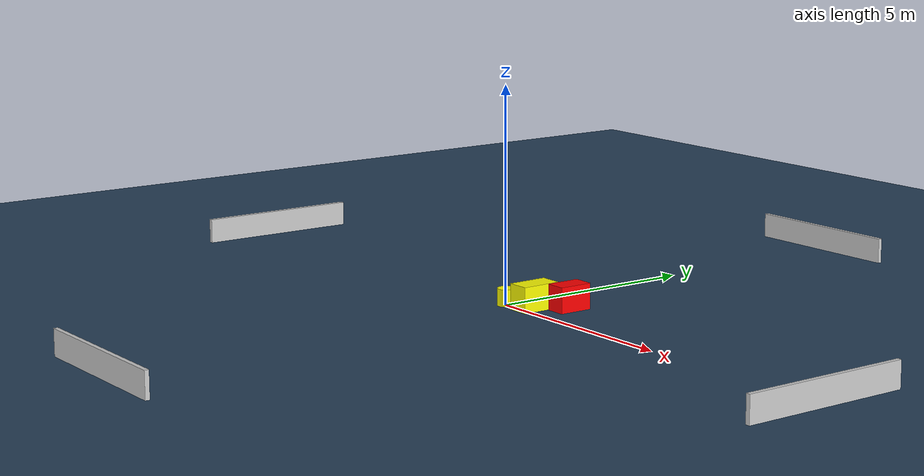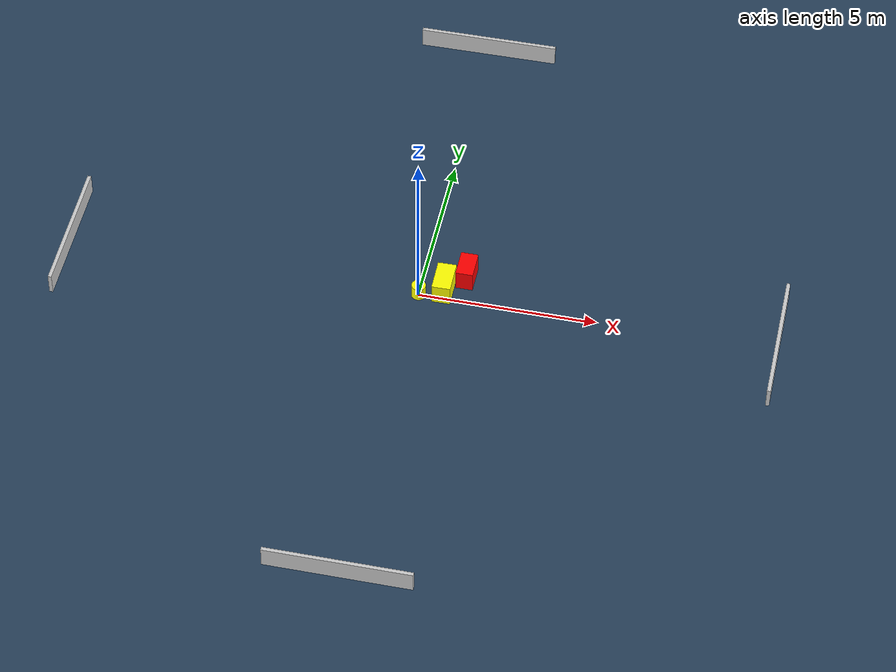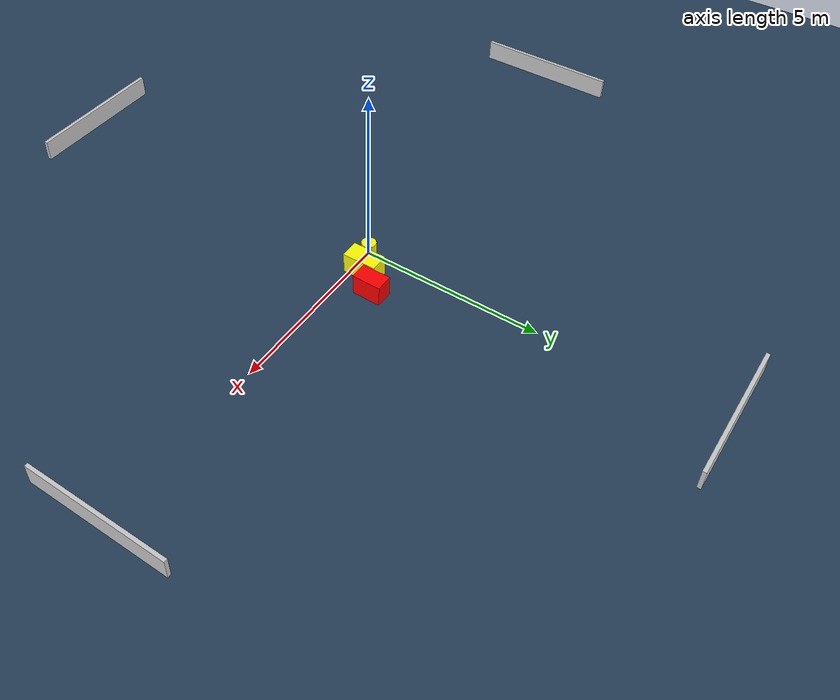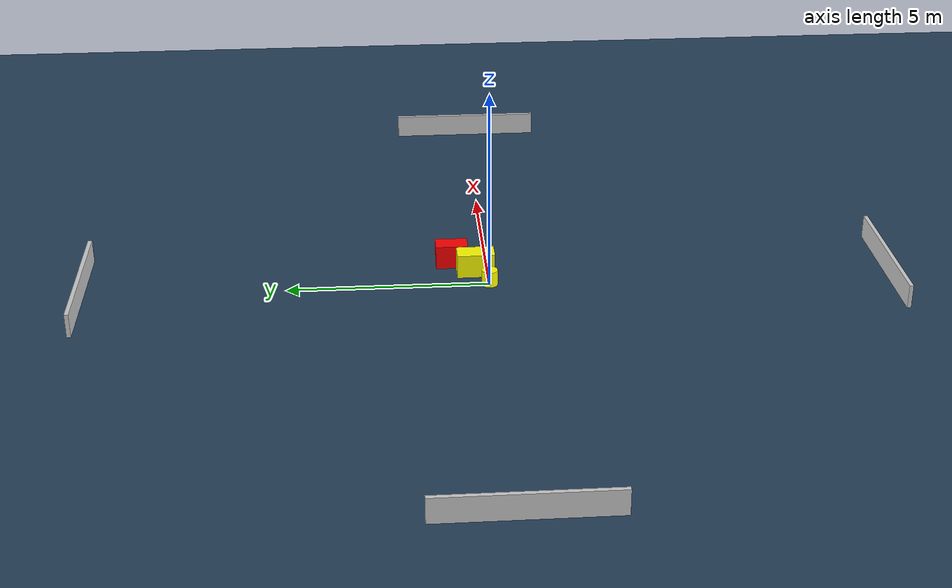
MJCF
<?xml version="1.0" ?>
<mujoco model="generated_environment">
  <option timestep="0.01" integrator="RK4" cone="elliptic"/>
  <default>
    <geom density="1"/>
  </default>
  <asset>
    <texture builtin="gradient" height="3072" name="skybox" rgb1="0.3 0.5 0.7" rgb2="0 0 0" type="skybox" width="512"/>
    <texture builtin="checker" height="300" name="groundplane" rgb1="0.2 0.3 0.4" rgb2="0.1 0.2 0.3" type="2d" width="300"/>
    <material name="groundplane" reflectance="0.2" texrepeat="5 5" texture="groundplane"/>
  </asset>
  <worldbody>
    <light dir="0 0 -1" directional="true" pos="0 0 1.5"/>
    <geom condim="3" friction="0.5 0.005 0.001" material="groundplane" name="floor" pos="0 0 0" size="0 0 0.05" type="plane"/>
    <body name="walls">
      <geom name="wall_1" condim="4" pos="-10.0 0.0 0.3" rgba="0.800000011920929 0.800000011920929 0.800000011920929 1.0" size="0.05 2.0 0.3" type="box"/>
      <geom name="wall_2" condim="4" pos="10.0 0.0 0.3" rgba="0.800000011920929 0.800000011920929 0.800000011920929 1.0" size="0.05 2.0 0.3" type="box"/>
      <geom name="wall_3" condim="4" pos="0.0 -10.0 0.3" rgba="0.800000011920929 0.800000011920929 0.800000011920929 1.0" size="2.0 0.05 0.3" type="box"/>
      <geom name="wall_4" condim="4" pos="0.0 10.0 0.3" rgba="0.800000011920929 0.800000011920929 0.800000011920929 1.0" size="2.0 0.05 0.3" type="box"/>
    </body>
    <body name="robot">
      <joint name="joint_x" type="slide" pos="0 0 0" axis="1 0 0"/>
      <joint name="joint_y" type="slide" pos="0 0 0" axis="0 1 0"/>
      <geom name="robot" type="cylinder" pos="0.0 0.0 0.2" size="0.2 0.2 0.0" mass="5.0" friction="1.0 0.005 0.0001" condim="4" rgba="1.0 1.0 0.0 1.0"/>
    </body>
    <body name="obstacle_1_movable">
      <geom name="obstacle_1_movable" condim="4" pos="0.6523016944380692 0.3069661116856291 0.3" euler="0 0 270.52754109605075" friction="0.0 0.005 0.001" rgba="1.0 1.0 0.0 1.0" size="0.4701772460243498 0.2610866368994395 0.3" type="box" mass="0.1"/>
      <joint type="free"/>
    </body>
    <body name="obstacle_2_static">
      <geom name="obstacle_2_static" condim="4" pos="1.1811149104809198 0.8834527766585405 0.3" euler="0 0 359.69934916679705" friction="0.0 0.005 0.001" rgba="1.0 0.0 0.0 1.0" size="0.24236904645907434 0.4017035489714029 0.3" type="box"/>
    </body>
  </worldbody>
  <actuator>
    <motor name="actuator_x" joint="joint_x" gear="1" ctrlrange="-1 1"/>
    <motor name="actuator_y" joint="joint_y" gear="1" ctrlrange="-1 1"/>
  </actuator>
</mujoco>
